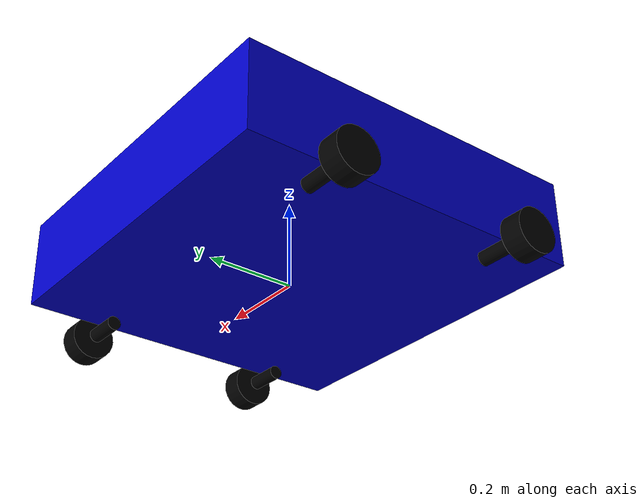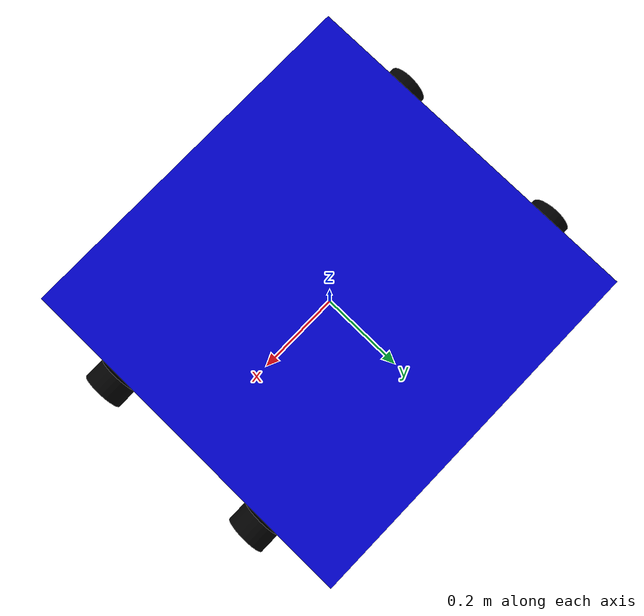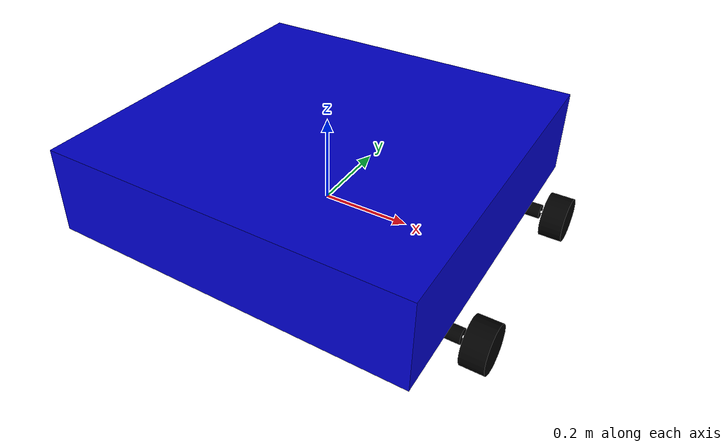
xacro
<?xml version="1.0"?>
<robot xmlns:xacro="http://www.ros.org/wiki/xacro" name="damr">

    <material name="blue">
        <color rgba="0 0 0.8 1"/>
    </material>

    <material name="red">
        <color rgba="0.8 0 0 1"/>
    </material>

    <material name="green">
        <color rgba="0 0.8 0 1"/>
    </material>

    <material name="grey">
        <color rgba="0.75 0.75 0.75 1"/>
    </material>

    <material name="white">
        <color rgba="1.0 1.0 1.0 1"/>
    </material>

    <material name="black">
        <color rgba="0 0 0 1"/>
    </material>

    <material name="yellow">
        <color rgba="1 1 0 1"/>
    </material>

    <xacro:macro name="default_inertial" params="mass">
        <inertial>
            <mass value="${mass}" />
            <inertia ixx="1.0" ixy="0.0" ixz="0.0" iyy="1.0" iyz="0.0" izz="1.0" />
        </inertial>
    </xacro:macro>

    <xacro:macro name="wheel_set" params="num y_reflect x_reflect">
       <link name="motor_${num}">
        <visual>
            <geometry>
                <cylinder radius="0.016" length="0.082"/>
            </geometry>
            <origin xyz="0.0 0.0 -0.016" rpy="0.0 1.5708 0.0"/>
            <material name="black"/>

        </visual>
        <collision>
            <geometry>
                <cylinder radius="0.016" length="0.082"/>
            </geometry>
        <origin xyz="0.0 0.0 -0.016" rpy="0.0 1.5708 0.0"/>
        </collision>
        <xacro:default_inertial mass="0.3"/>

       </link>

       <joint name="base_motor${num}_joint" type="fixed">
            <parent link="base_link"/>
            <child link="motor_${num}"/>
            <origin xyz="${y_reflect*0.392} ${-0.224*x_reflect} 0.0" rpy="0.0 0.0 0.0"/>
       </joint>

       <link name="shaft_${num}">
        <visual>
            <geometry>
                <cylinder radius="0.003" length="0.012"/>
            </geometry>
            <origin xyz="${y_reflect*0.006} 0.0 0.0" rpy="0.0 1.5708 0.0"/>
            <material name="white"/>

        </visual>
        <collision>
            <geometry>
                <cylinder radius="0.003" length="0.012"/>
            </geometry>
            <origin xyz="${y_reflect*0.006} 0.0 0.0" rpy="0.0 1.5708 0.0"/>
        </collision>
       </link>

       <joint name="motor${num}_shaft${num}_joint" type="fixed">
            <parent link="motor_${num}"/>
            <child link="shaft_${num}"/>

            <origin xyz="${y_reflect*0.041} 0 -0.016" rpy="0 0 0"/>
       </joint>

       <link name="wheel_${num}">
            <visual>
                <geometry>
                    <cylinder radius="0.05" length="0.05"/>
                </geometry>
                <origin xyz="${y_reflect*0.025} 0.0 0.0" rpy="0.0 1.5708 0.0"/>
                <material name="black"/>

            </visual>
            <collision>
                <geometry>
                    <cylinder radius="0.05" length="0.05"/>
                </geometry>
                <origin xyz="${y_reflect*0.025} 0.0 0.0" rpy="0.0 1.5708 0.0"/>
            </collision>
            <xacro:default_inertial mass="0.4"/>
       </link>

       <joint name="shaft${num}_wheel${num}_joint" type="continuous">
            <parent link="shaft_${num}"/>
            <child link="wheel_${num}"/>
            <axis xyz="1 0 0"/>
            <origin xyz="${y_reflect*0.012} 0.0 0.0" rpy="0.0 0.0 0.0"/>
       </joint>

       <gazebo reference="wheel_${num}">
        <mu1 value="200.0"/>
        <mu2 value="100.0"/>
        <kp value="10000000.0" />
        <kd value="1.0" />
        <material>Gazebo/Black</material>
       </gazebo>
       <transmission name="wheel_${num}_trans">
        <type>transmission_interface/SimpleTransmission</type>
        <actuator name="wheel_${num}_motor">
            <mechanicalReduction>1</mechanicalReduction>
        </actuator>
        <joint name="shaft${num}_wheel${num}_joint">
            <hardwareInterface>VelocityJointInterface</hardwareInterface>
        </joint>
       </transmission>

    </xacro:macro>

    <link name="body_link">
    </link>
    <link name="base_link">
        <visual>
            <geometry>
                <box size="0.82 0.8 0.2"/>
            </geometry>
            <origin xyz="0.0 0.0 0.1" rpy="0.0 0.0 0.0"/>
            <material name="blue"/>
        </visual>
        <collision>
            <geometry>
                <box size="0.82 0.8 0.2"/>
            </geometry>
            <origin xyz="0.0 0.0 0.1" rpy="0.0 0.0 0.0"/>
        </collision>
        <xacro:default_inertial mass="10"/>
    </link>
    <joint name="base_body_joint" type="fixed">
     <parent link="body_link"/>
     <child link="base_link"/>
     <origin xyz="0.0 0.0 0.0" rpy="0.0 0.0 0.0"/>
    </joint>

   <xacro:wheel_set num="1" y_reflect="1" x_reflect="1"/>
   <xacro:wheel_set num="2" y_reflect="-1" x_reflect="1"/>
   <xacro:wheel_set num="3" y_reflect="1" x_reflect="-1"/>
   <xacro:wheel_set num="4" y_reflect="-1" x_reflect="-1"/>

</robot>
